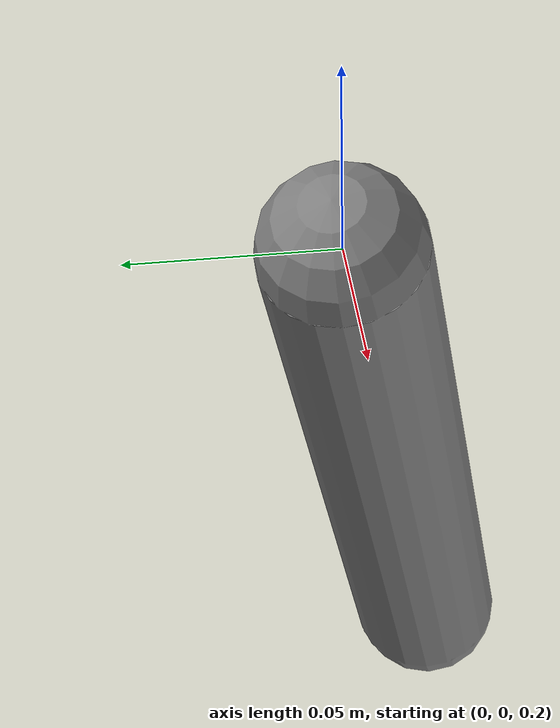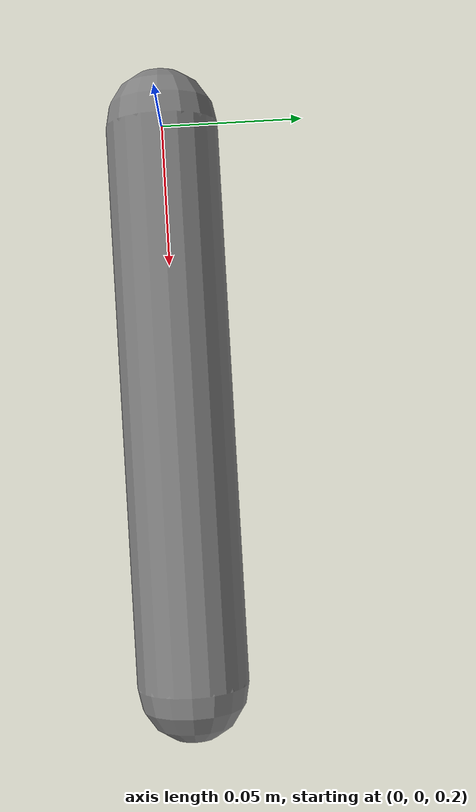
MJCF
<mujoco model="interface_probe">
  <option timestep="0.002" gravity="0 0 0"/>
  <worldbody>
    <body name="link" pos="0 0 0.2">
      <joint name="hinge" type="hinge" axis="0 0 1" range="-1 1" limited="true" damping="1"/>
      <geom type="capsule" fromto="0 0 0 0.2 0 0" size="0.02" mass="1"/>
    </body>
  </worldbody>
  <compiler angle="radian"/>
  <actuator>
    <position name="servo" joint="hinge" kp="30" ctrlrange="-1 1" ctrllimited="true"/>
  </actuator>
</mujoco>
